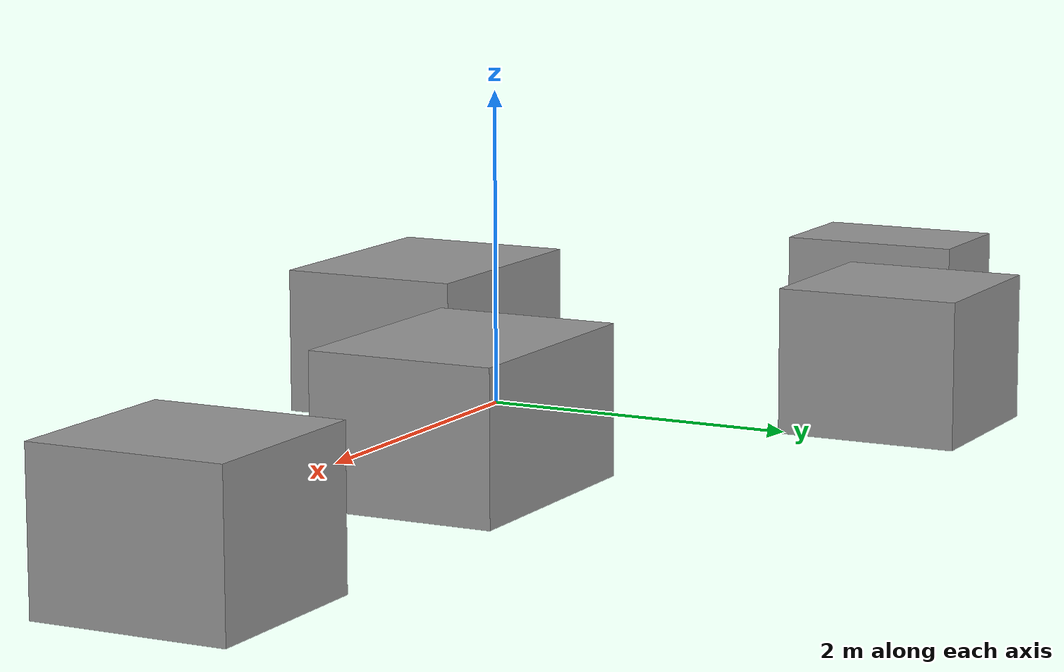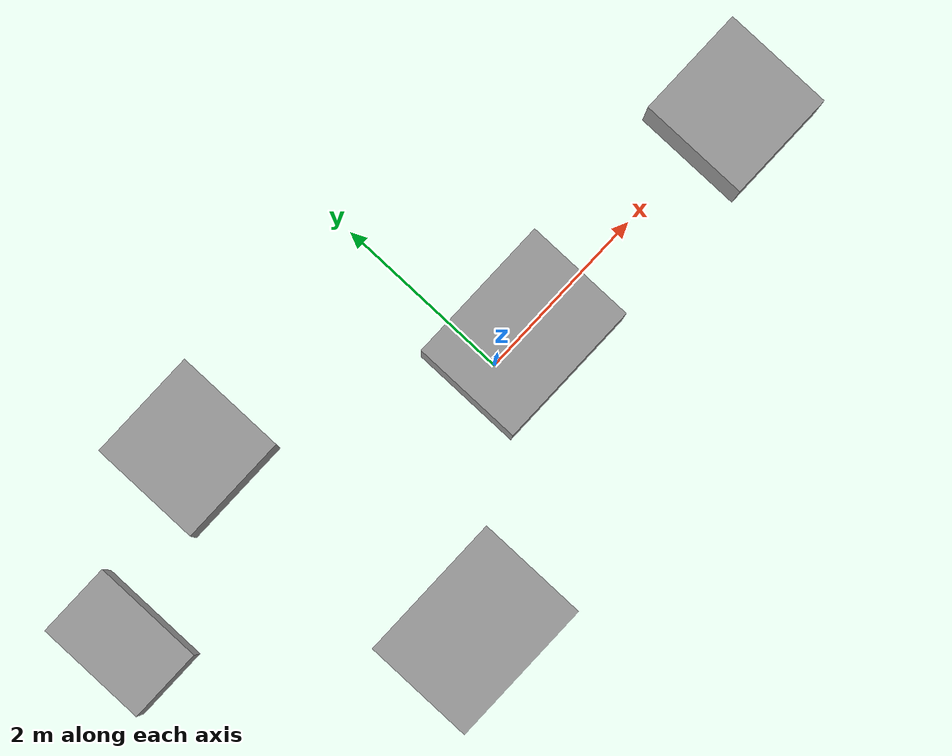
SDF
<?xml version='1.0'?>
<sdf version='1.6'>
  <model name='Untitled'>
    <link name='link_2'>
      <inertial>
        <mass>1</mass>
        <inertia>
          <ixx>0.166667</ixx>
          <ixy>0</ixy>
          <ixz>0</ixz>
          <iyy>0.166667</iyy>
          <iyz>0</iyz>
          <izz>0.166667</izz>
        </inertia>
        <pose frame=''>0 0 0 0 -0 0</pose>
      </inertial>
      <pose frame=''>0 0 0 0 -0 0</pose>
      <gravity>1</gravity>
      <self_collide>0</self_collide>
      <kinematic>0</kinematic>
      <enable_wind>0</enable_wind>
      <visual name='visual'>
        <pose frame=''>-4.62 0.84 0 0 -0 0</pose>
        <geometry>
          <box>
            <size>0.84 1.26 1</size>
          </box>
        </geometry>
        <material>
          <lighting>1</lighting>
          <script>
            <uri>file://media/materials/scripts/gazebo.material</uri>
            <name>Gazebo/Grey</name>
          </script>
          <shader type='vertex'>
            <normal_map>__default__</normal_map>
          </shader>
          <ambient>0.3 0.3 0.3 1</ambient>
          <diffuse>0.7 0.7 0.7 1</diffuse>
          <specular>0.01 0.01 0.01 1</specular>
          <emissive>0 0 0 1</emissive>
        </material>
        <transparency>0</transparency>
        <cast_shadows>1</cast_shadows>
      </visual>
      <collision name='collision'>
        <laser_retro>0</laser_retro>
        <max_contacts>10</max_contacts>
        <pose frame=''>-4.62 0.84 0 0 -0 0</pose>
        <geometry>
          <box>
            <size>0.84 1.26 1</size>
          </box>
        </geometry>
        <surface>
          <friction>
            <ode>
              <mu>1</mu>
              <mu2>1</mu2>
              <fdir1>0 0 0</fdir1>
              <slip1>0</slip1>
              <slip2>0</slip2>
            </ode>
            <torsional>
              <coefficient>1</coefficient>
              <patch_radius>0</patch_radius>
              <surface_radius>0</surface_radius>
              <use_patch_radius>1</use_patch_radius>
              <ode>
                <slip>0</slip>
              </ode>
            </torsional>
          </friction>
          <bounce>
            <restitution_coefficient>0</restitution_coefficient>
            <threshold>1e+06</threshold>
          </bounce>
          <contact>
            <collide_without_contact>0</collide_without_contact>
            <collide_without_contact_bitmask>1</collide_without_contact_bitmask>
            <collide_bitmask>1</collide_bitmask>
            <ode>
              <soft_cfm>0</soft_cfm>
              <soft_erp>0.2</soft_erp>
              <kp>1e+13</kp>
              <kd>1</kd>
              <max_vel>0.01</max_vel>
              <min_depth>0</min_depth>
            </ode>
            <bullet>
              <split_impulse>1</split_impulse>
              <split_impulse_penetration_threshold>-0.01</split_impulse_penetration_threshold>
              <soft_cfm>0</soft_cfm>
              <soft_erp>0.2</soft_erp>
              <kp>1e+13</kp>
              <kd>1</kd>
            </bullet>
          </contact>
        </surface>
      </collision>
    </link>
    <link name='link_3'>
      <inertial>
        <mass>1</mass>
        <inertia>
          <ixx>0.166667</ixx>
          <ixy>0</ixy>
          <ixz>0</ixz>
          <iyy>0.166667</iyy>
          <iyz>0</iyz>
          <izz>0.166667</izz>
        </inertia>
        <pose frame=''>0 0 0 0 -0 0</pose>
      </inertial>
      <pose frame=''>0 0 0 0 -0 0</pose>
      <gravity>1</gravity>
      <self_collide>0</self_collide>
      <kinematic>0</kinematic>
      <enable_wind>0</enable_wind>
      <visual name='visual'>
        <pose frame=''>-2.73 1.68 0 0 -0 0</pose>
        <geometry>
          <box>
            <size>1.26 1.26 1</size>
          </box>
        </geometry>
        <material>
          <lighting>1</lighting>
          <script>
            <uri>file://media/materials/scripts/gazebo.material</uri>
            <name>Gazebo/Grey</name>
          </script>
          <shader type='vertex'>
            <normal_map>__default__</normal_map>
          </shader>
          <ambient>0.3 0.3 0.3 1</ambient>
          <diffuse>0.7 0.7 0.7 1</diffuse>
          <specular>0.01 0.01 0.01 1</specular>
          <emissive>0 0 0 1</emissive>
        </material>
        <transparency>0</transparency>
        <cast_shadows>1</cast_shadows>
      </visual>
      <collision name='collision'>
        <laser_retro>0</laser_retro>
        <max_contacts>10</max_contacts>
        <pose frame=''>-2.73 1.68 0 0 -0 0</pose>
        <geometry>
          <box>
            <size>1.26 1.26 1</size>
          </box>
        </geometry>
        <surface>
          <friction>
            <ode>
              <mu>1</mu>
              <mu2>1</mu2>
              <fdir1>0 0 0</fdir1>
              <slip1>0</slip1>
              <slip2>0</slip2>
            </ode>
            <torsional>
              <coefficient>1</coefficient>
              <patch_radius>0</patch_radius>
              <surface_radius>0</surface_radius>
              <use_patch_radius>1</use_patch_radius>
              <ode>
                <slip>0</slip>
              </ode>
            </torsional>
          </friction>
          <bounce>
            <restitution_coefficient>0</restitution_coefficient>
            <threshold>1e+06</threshold>
          </bounce>
          <contact>
            <collide_without_contact>0</collide_without_contact>
            <collide_without_contact_bitmask>1</collide_without_contact_bitmask>
            <collide_bitmask>1</collide_bitmask>
            <ode>
              <soft_cfm>0</soft_cfm>
              <soft_erp>0.2</soft_erp>
              <kp>1e+13</kp>
              <kd>1</kd>
              <max_vel>0.01</max_vel>
              <min_depth>0</min_depth>
            </ode>
            <bullet>
              <split_impulse>1</split_impulse>
              <split_impulse_penetration_threshold>-0.01</split_impulse_penetration_threshold>
              <soft_cfm>0</soft_cfm>
              <soft_erp>0.2</soft_erp>
              <kp>1e+13</kp>
              <kd>1</kd>
            </bullet>
          </contact>
        </surface>
      </collision>
    </link>
    <link name='link_4'>
      <inertial>
        <mass>1</mass>
        <inertia>
          <ixx>0.166667</ixx>
          <ixy>0</ixy>
          <ixz>0</ixz>
          <iyy>0.166667</iyy>
          <iyz>0</iyz>
          <izz>0.166667</izz>
        </inertia>
        <pose frame=''>0 0 0 0 -0 0</pose>
      </inertial>
      <pose frame=''>0 0 0 0 -0 0</pose>
      <gravity>1</gravity>
      <self_collide>0</self_collide>
      <kinematic>0</kinematic>
      <enable_wind>0</enable_wind>
      <visual name='visual'>
        <pose frame=''>-2.10 -1.68 0 0 -0 0</pose>
        <geometry>
          <box>
            <size>1.68 1.26 1</size>
          </box>
        </geometry>
        <material>
          <lighting>1</lighting>
          <script>
            <uri>file://media/materials/scripts/gazebo.material</uri>
            <name>Gazebo/Grey</name>
          </script>
          <shader type='vertex'>
            <normal_map>__default__</normal_map>
          </shader>
          <ambient>0.3 0.3 0.3 1</ambient>
          <diffuse>0.7 0.7 0.7 1</diffuse>
          <specular>0.01 0.01 0.01 1</specular>
          <emissive>0 0 0 1</emissive>
        </material>
        <transparency>0</transparency>
        <cast_shadows>1</cast_shadows>
      </visual>
      <collision name='collision'>
        <laser_retro>0</laser_retro>
        <max_contacts>10</max_contacts>
        <pose frame=''>-2.10 -1.68 0 0 -0 0</pose>
        <geometry>
          <box>
            <size>1.68 1.26 1</size>
          </box>
        </geometry>
        <surface>
          <friction>
            <ode>
              <mu>1</mu>
              <mu2>1</mu2>
              <fdir1>0 0 0</fdir1>
              <slip1>0</slip1>
              <slip2>0</slip2>
            </ode>
            <torsional>
              <coefficient>1</coefficient>
              <patch_radius>0</patch_radius>
              <surface_radius>0</surface_radius>
              <use_patch_radius>1</use_patch_radius>
              <ode>
                <slip>0</slip>
              </ode>
            </torsional>
          </friction>
          <bounce>
            <restitution_coefficient>0</restitution_coefficient>
            <threshold>1e+06</threshold>
          </bounce>
          <contact>
            <collide_without_contact>0</collide_without_contact>
            <collide_without_contact_bitmask>1</collide_without_contact_bitmask>
            <collide_bitmask>1</collide_bitmask>
            <ode>
              <soft_cfm>0</soft_cfm>
              <soft_erp>0.2</soft_erp>
              <kp>1e+13</kp>
              <kd>1</kd>
              <max_vel>0.01</max_vel>
              <min_depth>0</min_depth>
            </ode>
            <bullet>
              <split_impulse>1</split_impulse>
              <split_impulse_penetration_threshold>-0.01</split_impulse_penetration_threshold>
              <soft_cfm>0</soft_cfm>
              <soft_erp>0.2</soft_erp>
              <kp>1e+13</kp>
              <kd>1</kd>
            </bullet>
          </contact>
        </surface>
      </collision>
    </link>
    <link name='link_5'>
      <inertial>
        <mass>1</mass>
        <inertia>
          <ixx>0.166667</ixx>
          <ixy>0</ixy>
          <ixz>0</ixz>
          <iyy>0.166667</iyy>
          <iyz>0</iyz>
          <izz>0.166667</izz>
        </inertia>
        <pose frame=''>0 0 0 0 -0 0</pose>
      </inertial>
      <pose frame=''>0 0 0 0 -0 0</pose>
      <gravity>1</gravity>
      <self_collide>0</self_collide>
      <kinematic>0</kinematic>
      <enable_wind>0</enable_wind>
      <visual name='visual'>
        <pose frame=''>0.42 0 0 0 -0 0</pose>
        <geometry>
          <box>
            <size>1.68 1.26 1</size>
          </box>
        </geometry>
        <material>
          <lighting>1</lighting>
          <script>
            <uri>file://media/materials/scripts/gazebo.material</uri>
            <name>Gazebo/Grey</name>
          </script>
          <shader type='vertex'>
            <normal_map>__default__</normal_map>
          </shader>
          <ambient>0.3 0.3 0.3 1</ambient>
          <diffuse>0.7 0.7 0.7 1</diffuse>
          <specular>0.01 0.01 0.01 1</specular>
          <emissive>0 0 0 1</emissive>
        </material>
        <transparency>0</transparency>
        <cast_shadows>1</cast_shadows>
      </visual>
      <collision name='collision'>
        <laser_retro>0</laser_retro>
        <max_contacts>10</max_contacts>
        <pose frame=''>0.42 0 0 0 -0 0</pose>
        <geometry>
          <box>
            <size>1.68 1.26 1</size>
          </box>
        </geometry>
        <surface>
          <friction>
            <ode>
              <mu>1</mu>
              <mu2>1</mu2>
              <fdir1>0 0 0</fdir1>
              <slip1>0</slip1>
              <slip2>0</slip2>
            </ode>
            <torsional>
              <coefficient>1</coefficient>
              <patch_radius>0</patch_radius>
              <surface_radius>0</surface_radius>
              <use_patch_radius>1</use_patch_radius>
              <ode>
                <slip>0</slip>
              </ode>
            </torsional>
          </friction>
          <bounce>
            <restitution_coefficient>0</restitution_coefficient>
            <threshold>1e+06</threshold>
          </bounce>
          <contact>
            <collide_without_contact>0</collide_without_contact>
            <collide_without_contact_bitmask>1</collide_without_contact_bitmask>
            <collide_bitmask>1</collide_bitmask>
            <ode>
              <soft_cfm>0</soft_cfm>
              <soft_erp>0.2</soft_erp>
              <kp>1e+13</kp>
              <kd>1</kd>
              <max_vel>0.01</max_vel>
              <min_depth>0</min_depth>
            </ode>
            <bullet>
              <split_impulse>1</split_impulse>
              <split_impulse_penetration_threshold>-0.01</split_impulse_penetration_threshold>
              <soft_cfm>0</soft_cfm>
              <soft_erp>0.2</soft_erp>
              <kp>1e+13</kp>
              <kd>1</kd>
            </bullet>
          </contact>
        </surface>
      </collision>
    </link>
    <link name='link_6'>
      <inertial>
        <mass>1</mass>
        <inertia>
          <ixx>0.166667</ixx>
          <ixy>0</ixy>
          <ixz>0</ixz>
          <iyy>0.166667</iyy>
          <iyz>0</iyz>
          <izz>0.166667</izz>
        </inertia>
        <pose frame=''>0 0 0 0 -0 0</pose>
      </inertial>
      <pose frame=''>0 0 0 0 -0 0</pose>
      <gravity>1</gravity>
      <self_collide>0</self_collide>
      <kinematic>0</kinematic>
      <enable_wind>0</enable_wind>
      <visual name='visual'>
        <pose frame=''>3.57 0 0 0 -0 0</pose>
        <geometry>
          <box>
            <size>1.26 1.26 1</size>
          </box>
        </geometry>
        <material>
          <lighting>1</lighting>
          <script>
            <uri>file://media/materials/scripts/gazebo.material</uri>
            <name>Gazebo/Grey</name>
          </script>
          <shader type='vertex'>
            <normal_map>__default__</normal_map>
          </shader>
          <ambient>0.3 0.3 0.3 1</ambient>
          <diffuse>0.7 0.7 0.7 1</diffuse>
          <specular>0.01 0.01 0.01 1</specular>
          <emissive>0 0 0 1</emissive>
        </material>
        <transparency>0</transparency>
        <cast_shadows>1</cast_shadows>
      </visual>
      <collision name='collision'>
        <laser_retro>0</laser_retro>
        <max_contacts>10</max_contacts>
        <pose frame=''>3.57 0 0 0 -0 0</pose>
        <geometry>
          <box>
            <size>1.26 1.26 1</size>
          </box>
        </geometry>
        <surface>
          <friction>
            <ode>
              <mu>1</mu>
              <mu2>1</mu2>
              <fdir1>0 0 0</fdir1>
              <slip1>0</slip1>
              <slip2>0</slip2>
            </ode>
            <torsional>
              <coefficient>1</coefficient>
              <patch_radius>0</patch_radius>
              <surface_radius>0</surface_radius>
              <use_patch_radius>1</use_patch_radius>
              <ode>
                <slip>0</slip>
              </ode>
            </torsional>
          </friction>
          <bounce>
            <restitution_coefficient>0</restitution_coefficient>
            <threshold>1e+06</threshold>
          </bounce>
          <contact>
            <collide_without_contact>0</collide_without_contact>
            <collide_without_contact_bitmask>1</collide_without_contact_bitmask>
            <collide_bitmask>1</collide_bitmask>
            <ode>
              <soft_cfm>0</soft_cfm>
              <soft_erp>0.2</soft_erp>
              <kp>1e+13</kp>
              <kd>1</kd>
              <max_vel>0.01</max_vel>
              <min_depth>0</min_depth>
            </ode>
            <bullet>
              <split_impulse>1</split_impulse>
              <split_impulse_penetration_threshold>-0.01</split_impulse_penetration_threshold>
              <soft_cfm>0</soft_cfm>
              <soft_erp>0.2</soft_erp>
              <kp>1e+13</kp>
              <kd>1</kd>
            </bullet>
          </contact>
        </surface>
      </collision>
    </link>
    <static>1</static>
    <allow_auto_disable>1</allow_auto_disable>
  </model>
</sdf>
